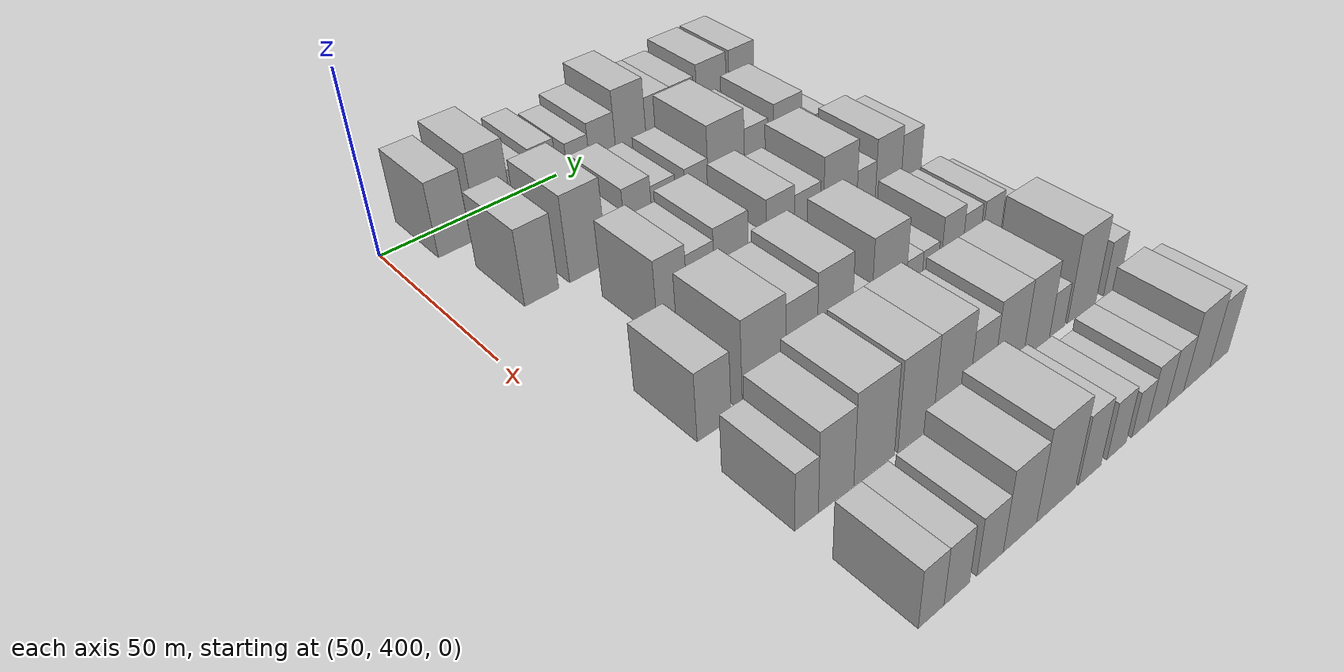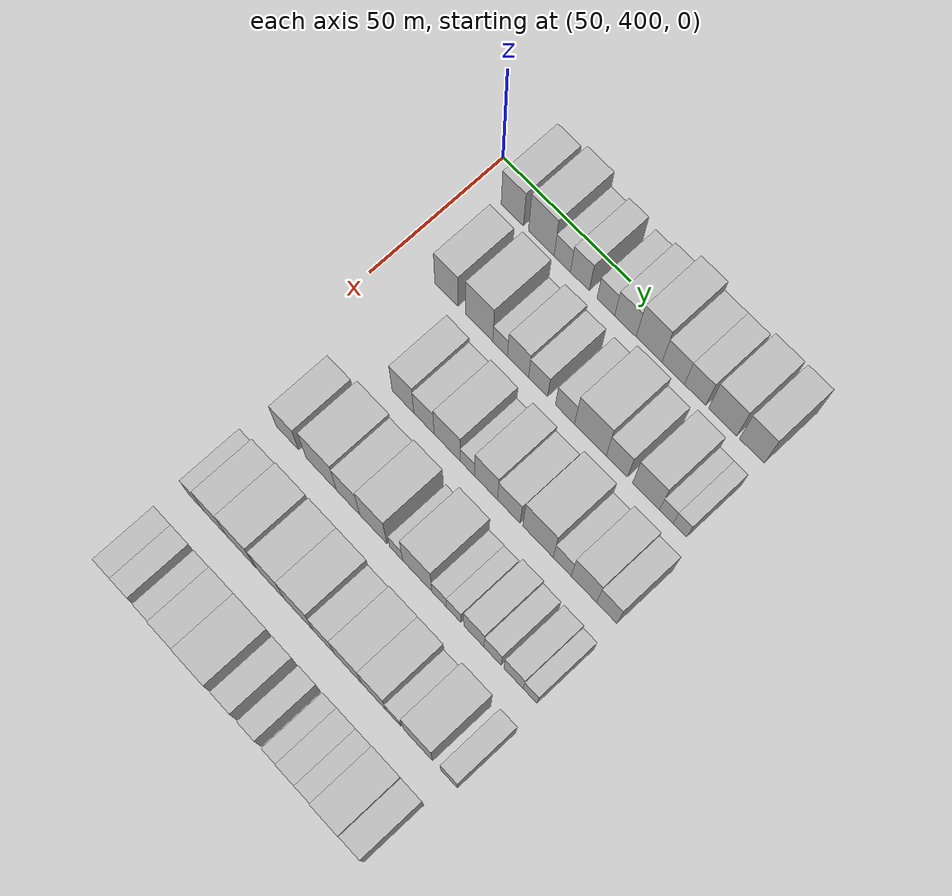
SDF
<sdf version="1.6">
 <world name="default">
  <model name="building_96">
   <static>1</static>
   <pose>50.0000 414.0144 0 0.000000 0.000000 0.000000</pose>
   <link name="link">
    <pose>0 0 10.50 0 0 0</pose>
    <collision name="collision"><geometry><box><size>20.0000 8.8623 21.0000</size></box></geometry></collision>
    <visual name="visual">
     <cast_shadows>0</cast_shadows>
     <geometry><box><size>20.0000 8.8623 21.0000</size></box></geometry>
     <material>
      <script>
       <uri>model://HANNAS_wall/materials/scripts</uri>
       <uri>model://HANNAS_wall/materials/textures</uri>
       <name>vrc/HANNAS_wall</name>
      </script>
     </material>
    </visual>
   </link>
  </model>
  <model name="building_97">
   <static>1</static>
   <pose>50.0000 425.4881 0 0.000000 0.000000 0.000000</pose>
   <link name="link">
    <pose>0 0 12.00 0 0 0</pose>
    <collision name="collision"><geometry><box><size>20.0000 10.0853 24.0000</size></box></geometry></collision>
    <visual name="visual">
     <cast_shadows>0</cast_shadows>
     <geometry><box><size>20.0000 10.0853 24.0000</size></box></geometry>
     <material>
      <script>
       <uri>model://HANNAS_wall/materials/scripts</uri>
       <uri>model://HANNAS_wall/materials/textures</uri>
       <name>vrc/HANNAS_wall</name>
      </script>
     </material>
    </visual>
   </link>
  </model>
  <model name="building_98">
   <static>1</static>
   <pose>50.0000 433.7259 0 0.000000 0.000000 0.000000</pose>
   <link name="link">
    <pose>0 0 7.50 0 0 0</pose>
    <collision name="collision"><geometry><box><size>20.0000 6.3903 15.0000</size></box></geometry></collision>
    <visual name="visual">
     <cast_shadows>0</cast_shadows>
     <geometry><box><size>20.0000 6.3903 15.0000</size></box></geometry>
     <material>
      <script>
       <uri>model://HANNAS_wall/materials/scripts</uri>
       <uri>model://HANNAS_wall/materials/textures</uri>
       <name>vrc/HANNAS_wall</name>
      </script>
     </material>
    </visual>
   </link>
  </model>
  <model name="building_99">
   <static>1</static>
   <pose>50.0000 440.5888 0 0.000000 0.000000 0.000000</pose>
   <link name="link">
    <pose>0 0 9.00 0 0 0</pose>
    <collision name="collision"><geometry><box><size>20.0000 7.3354 18.0000</size></box></geometry></collision>
    <visual name="visual">
     <cast_shadows>0</cast_shadows>
     <geometry><box><size>20.0000 7.3354 18.0000</size></box></geometry>
     <material>
      <script>
       <uri>model://HANNAS_wall/materials/scripts</uri>
       <uri>model://HANNAS_wall/materials/textures</uri>
       <name>vrc/HANNAS_wall</name>
      </script>
     </material>
    </visual>
   </link>
  </model>
  <model name="building_100">
   <static>1</static>
   <pose>50.0000 450.6545 0 0.000000 0.000000 0.000000</pose>
   <link name="link">
    <pose>0 0 7.50 0 0 0</pose>
    <collision name="collision"><geometry><box><size>20.0000 6.7960 15.0000</size></box></geometry></collision>
    <visual name="visual">
     <cast_shadows>0</cast_shadows>
     <geometry><box><size>20.0000 6.7960 15.0000</size></box></geometry>
     <material>
      <script>
       <uri>model://HANNAS_wall/materials/scripts</uri>
       <uri>model://HANNAS_wall/materials/textures</uri>
       <name>vrc/HANNAS_wall</name>
      </script>
     </material>
    </visual>
   </link>
  </model>
  <model name="building_101">
   <static>1</static>
   <pose>50.0000 458.1807 0 0.000000 0.000000 0.000000</pose>
   <link name="link">
    <pose>0 0 9.00 0 0 0</pose>
    <collision name="collision"><geometry><box><size>20.0000 8.2563 18.0000</size></box></geometry></collision>
    <visual name="visual">
     <cast_shadows>0</cast_shadows>
     <geometry><box><size>20.0000 8.2563 18.0000</size></box></geometry>
     <material>
      <script>
       <uri>model://HANNAS_wall/materials/scripts</uri>
       <uri>model://HANNAS_wall/materials/textures</uri>
       <name>vrc/HANNAS_wall</name>
      </script>
     </material>
    </visual>
   </link>
  </model>
  <model name="building_102">
   <static>1</static>
   <pose>50.0000 467.2118 0 0.000000 0.000000 0.000000</pose>
   <link name="link">
    <pose>0 0 12.00 0 0 0</pose>
    <collision name="collision"><geometry><box><size>20.0000 9.8058 24.0000</size></box></geometry></collision>
    <visual name="visual">
     <cast_shadows>0</cast_shadows>
     <geometry><box><size>20.0000 9.8058 24.0000</size></box></geometry>
     <material>
      <script>
       <uri>model://HANNAS_wall/materials/scripts</uri>
       <uri>model://HANNAS_wall/materials/textures</uri>
       <name>vrc/HANNAS_wall</name>
      </script>
     </material>
    </visual>
   </link>
  </model>
  <model name="building_103">
   <static>1</static>
   <pose>50.0000 476.3757 0 0.000000 0.000000 0.000000</pose>
   <link name="link">
    <pose>0 0 9.00 0 0 0</pose>
    <collision name="collision"><geometry><box><size>20.0000 8.5220 18.0000</size></box></geometry></collision>
    <visual name="visual">
     <cast_shadows>0</cast_shadows>
     <geometry><box><size>20.0000 8.5220 18.0000</size></box></geometry>
     <material>
      <script>
       <uri>model://HANNAS_wall/materials/scripts</uri>
       <uri>model://HANNAS_wall/materials/textures</uri>
       <name>vrc/HANNAS_wall</name>
      </script>
     </material>
    </visual>
   </link>
  </model>
  <model name="building_104">
   <static>1</static>
   <pose>50.0000 484.6328 0 0.000000 0.000000 0.000000</pose>
   <link name="link">
    <pose>0 0 9.00 0 0 0</pose>
    <collision name="collision"><geometry><box><size>20.0000 7.9922 18.0000</size></box></geometry></collision>
    <visual name="visual">
     <cast_shadows>0</cast_shadows>
     <geometry><box><size>20.0000 7.9922 18.0000</size></box></geometry>
     <material>
      <script>
       <uri>model://HANNAS_wall/materials/scripts</uri>
       <uri>model://HANNAS_wall/materials/textures</uri>
       <name>vrc/HANNAS_wall</name>
      </script>
     </material>
    </visual>
   </link>
  </model>
  <model name="building_105">
   <static>1</static>
   <pose>50.0000 494.8710 0 0.000000 0.000000 0.000000</pose>
   <link name="link">
    <pose>0 0 10.50 0 0 0</pose>
    <collision name="collision"><geometry><box><size>20.0000 10.4842 21.0000</size></box></geometry></collision>
    <visual name="visual">
     <cast_shadows>0</cast_shadows>
     <geometry><box><size>20.0000 10.4842 21.0000</size></box></geometry>
     <material>
      <script>
       <uri>model://HANNAS_wall/materials/scripts</uri>
       <uri>model://HANNAS_wall/materials/textures</uri>
       <name>vrc/HANNAS_wall</name>
      </script>
     </material>
    </visual>
   </link>
  </model>
  <model name="building_106">
   <static>1</static>
   <pose>50.0000 505.6787 0 0.000000 0.000000 0.000000</pose>
   <link name="link">
    <pose>0 0 10.50 0 0 0</pose>
    <collision name="collision"><geometry><box><size>20.0000 9.1311 21.0000</size></box></geometry></collision>
    <visual name="visual">
     <cast_shadows>0</cast_shadows>
     <geometry><box><size>20.0000 9.1311 21.0000</size></box></geometry>
     <material>
      <script>
       <uri>model://HANNAS_wall/materials/scripts</uri>
       <uri>model://HANNAS_wall/materials/textures</uri>
       <name>vrc/HANNAS_wall</name>
      </script>
     </material>
    </visual>
   </link>
  </model>
  <model name="building_212">
   <static>1</static>
   <pose>79.0000 418.7652 0 0.000000 0.000000 0.000000</pose>
   <link name="link">
    <pose>0 0 10.50 0 0 0</pose>
    <collision name="collision"><geometry><box><size>20.0000 9.1996 21.0000</size></box></geometry></collision>
    <visual name="visual">
     <cast_shadows>0</cast_shadows>
     <geometry><box><size>20.0000 9.1996 21.0000</size></box></geometry>
     <material>
      <script>
       <uri>model://HANNAS_wall/materials/scripts</uri>
       <uri>model://HANNAS_wall/materials/textures</uri>
       <name>vrc/HANNAS_wall</name>
      </script>
     </material>
    </visual>
   </link>
  </model>
  <model name="building_213">
   <static>1</static>
   <pose>79.0000 431.7060 0 0.000000 0.000000 0.000000</pose>
   <link name="link">
    <pose>0 0 12.00 0 0 0</pose>
    <collision name="collision"><geometry><box><size>20.0000 10.6821 24.0000</size></box></geometry></collision>
    <visual name="visual">
     <cast_shadows>0</cast_shadows>
     <geometry><box><size>20.0000 10.6821 24.0000</size></box></geometry>
     <material>
      <script>
       <uri>model://HANNAS_wall/materials/scripts</uri>
       <uri>model://HANNAS_wall/materials/textures</uri>
       <name>vrc/HANNAS_wall</name>
      </script>
     </material>
    </visual>
   </link>
  </model>
  <model name="building_214">
   <static>1</static>
   <pose>79.0000 439.8993 0 0.000000 0.000000 0.000000</pose>
   <link name="link">
    <pose>0 0 6.00 0 0 0</pose>
    <collision name="collision"><geometry><box><size>20.0000 5.7044 12.0000</size></box></geometry></collision>
    <visual name="visual">
     <cast_shadows>0</cast_shadows>
     <geometry><box><size>20.0000 5.7044 12.0000</size></box></geometry>
     <material>
      <script>
       <uri>model://HANNAS_wall/materials/scripts</uri>
       <uri>model://HANNAS_wall/materials/textures</uri>
       <name>vrc/HANNAS_wall</name>
      </script>
     </material>
    </visual>
   </link>
  </model>
  <model name="building_215">
   <static>1</static>
   <pose>79.0000 446.8409 0 0.000000 0.000000 0.000000</pose>
   <link name="link">
    <pose>0 0 9.00 0 0 0</pose>
    <collision name="collision"><geometry><box><size>20.0000 8.1787 18.0000</size></box></geometry></collision>
    <visual name="visual">
     <cast_shadows>0</cast_shadows>
     <geometry><box><size>20.0000 8.1787 18.0000</size></box></geometry>
     <material>
      <script>
       <uri>model://HANNAS_wall/materials/scripts</uri>
       <uri>model://HANNAS_wall/materials/textures</uri>
       <name>vrc/HANNAS_wall</name>
      </script>
     </material>
    </visual>
   </link>
  </model>
  <model name="building_216">
   <static>1</static>
   <pose>79.0000 454.5914 0 0.000000 0.000000 0.000000</pose>
   <link name="link">
    <pose>0 0 7.50 0 0 0</pose>
    <collision name="collision"><geometry><box><size>20.0000 7.3223 15.0000</size></box></geometry></collision>
    <visual name="visual">
     <cast_shadows>0</cast_shadows>
     <geometry><box><size>20.0000 7.3223 15.0000</size></box></geometry>
     <material>
      <script>
       <uri>model://HANNAS_wall/materials/scripts</uri>
       <uri>model://HANNAS_wall/materials/textures</uri>
       <name>vrc/HANNAS_wall</name>
      </script>
     </material>
    </visual>
   </link>
  </model>
  <model name="building_217">
   <static>1</static>
   <pose>79.0000 464.8938 0 0.000000 0.000000 0.000000</pose>
   <link name="link">
    <pose>0 0 7.50 0 0 0</pose>
    <collision name="collision"><geometry><box><size>20.0000 7.2827 15.0000</size></box></geometry></collision>
    <visual name="visual">
     <cast_shadows>0</cast_shadows>
     <geometry><box><size>20.0000 7.2827 15.0000</size></box></geometry>
     <material>
      <script>
       <uri>model://HANNAS_wall/materials/scripts</uri>
       <uri>model://HANNAS_wall/materials/textures</uri>
       <name>vrc/HANNAS_wall</name>
      </script>
     </material>
    </visual>
   </link>
  </model>
  <model name="building_218">
   <static>1</static>
   <pose>79.0000 474.5180 0 0.000000 0.000000 0.000000</pose>
   <link name="link">
    <pose>0 0 12.00 0 0 0</pose>
    <collision name="collision"><geometry><box><size>20.0000 11.9656 24.0000</size></box></geometry></collision>
    <visual name="visual">
     <cast_shadows>0</cast_shadows>
     <geometry><box><size>20.0000 11.9656 24.0000</size></box></geometry>
     <material>
      <script>
       <uri>model://HANNAS_wall/materials/scripts</uri>
       <uri>model://HANNAS_wall/materials/textures</uri>
       <name>vrc/HANNAS_wall</name>
      </script>
     </material>
    </visual>
   </link>
  </model>
  <model name="building_219">
   <static>1</static>
   <pose>79.0000 484.4787 0 0.000000 0.000000 0.000000</pose>
   <link name="link">
    <pose>0 0 9.00 0 0 0</pose>
    <collision name="collision"><geometry><box><size>20.0000 7.9559 18.0000</size></box></geometry></collision>
    <visual name="visual">
     <cast_shadows>0</cast_shadows>
     <geometry><box><size>20.0000 7.9559 18.0000</size></box></geometry>
     <material>
      <script>
       <uri>model://HANNAS_wall/materials/scripts</uri>
       <uri>model://HANNAS_wall/materials/textures</uri>
       <name>vrc/HANNAS_wall</name>
      </script>
     </material>
    </visual>
   </link>
  </model>
  <model name="building_220">
   <static>1</static>
   <pose>79.0000 495.4283 0 0.000000 0.000000 0.000000</pose>
   <link name="link">
    <pose>0 0 10.50 0 0 0</pose>
    <collision name="collision"><geometry><box><size>20.0000 9.9432 21.0000</size></box></geometry></collision>
    <visual name="visual">
     <cast_shadows>0</cast_shadows>
     <geometry><box><size>20.0000 9.9432 21.0000</size></box></geometry>
     <material>
      <script>
       <uri>model://HANNAS_wall/materials/scripts</uri>
       <uri>model://HANNAS_wall/materials/textures</uri>
       <name>vrc/HANNAS_wall</name>
      </script>
     </material>
    </visual>
   </link>
  </model>
  <model name="building_221">
   <static>1</static>
   <pose>79.0000 502.9226 0 0.000000 0.000000 0.000000</pose>
   <link name="link">
    <pose>0 0 6.00 0 0 0</pose>
    <collision name="collision"><geometry><box><size>20.0000 5.0453 12.0000</size></box></geometry></collision>
    <visual name="visual">
     <cast_shadows>0</cast_shadows>
     <geometry><box><size>20.0000 5.0453 12.0000</size></box></geometry>
     <material>
      <script>
       <uri>model://HANNAS_wall/materials/scripts</uri>
       <uri>model://HANNAS_wall/materials/textures</uri>
       <name>vrc/HANNAS_wall</name>
      </script>
     </material>
    </visual>
   </link>
  </model>
  <model name="building_222">
   <static>1</static>
   <pose>79.0000 507.9331 0 0.000000 0.000000 0.000000</pose>
   <link name="link">
    <pose>0 0 6.00 0 0 0</pose>
    <collision name="collision"><geometry><box><size>20.0000 4.9758 12.0000</size></box></geometry></collision>
    <visual name="visual">
     <cast_shadows>0</cast_shadows>
     <geometry><box><size>20.0000 4.9758 12.0000</size></box></geometry>
     <material>
      <script>
       <uri>model://HANNAS_wall/materials/scripts</uri>
       <uri>model://HANNAS_wall/materials/textures</uri>
       <name>vrc/HANNAS_wall</name>
      </script>
     </material>
    </visual>
   </link>
  </model>
  <model name="building_319">
   <static>1</static>
   <pose>108.0000 433.1368 0 0.000000 0.000000 0.000000</pose>
   <link name="link">
    <pose>0 0 10.50 0 0 0</pose>
    <collision name="collision"><geometry><box><size>20.0000 8.5145 21.0000</size></box></geometry></collision>
    <visual name="visual">
     <cast_shadows>0</cast_shadows>
     <geometry><box><size>20.0000 8.5145 21.0000</size></box></geometry>
     <material>
      <script>
       <uri>model://HANNAS_wall/materials/scripts</uri>
       <uri>model://HANNAS_wall/materials/textures</uri>
       <name>vrc/HANNAS_wall</name>
      </script>
     </material>
    </visual>
   </link>
  </model>
  <model name="building_320">
   <static>1</static>
   <pose>108.0000 441.3507 0 0.000000 0.000000 0.000000</pose>
   <link name="link">
    <pose>0 0 9.00 0 0 0</pose>
    <collision name="collision"><geometry><box><size>20.0000 7.9133 18.0000</size></box></geometry></collision>
    <visual name="visual">
     <cast_shadows>0</cast_shadows>
     <geometry><box><size>20.0000 7.9133 18.0000</size></box></geometry>
     <material>
      <script>
       <uri>model://HANNAS_wall/materials/scripts</uri>
       <uri>model://HANNAS_wall/materials/textures</uri>
       <name>vrc/HANNAS_wall</name>
      </script>
     </material>
    </visual>
   </link>
  </model>
  <model name="building_321">
   <static>1</static>
   <pose>108.0000 450.3646 0 0.000000 0.000000 0.000000</pose>
   <link name="link">
    <pose>0 0 10.50 0 0 0</pose>
    <collision name="collision"><geometry><box><size>20.0000 10.1147 21.0000</size></box></geometry></collision>
    <visual name="visual">
     <cast_shadows>0</cast_shadows>
     <geometry><box><size>20.0000 10.1147 21.0000</size></box></geometry>
     <material>
      <script>
       <uri>model://HANNAS_wall/materials/scripts</uri>
       <uri>model://HANNAS_wall/materials/textures</uri>
       <name>vrc/HANNAS_wall</name>
      </script>
     </material>
    </visual>
   </link>
  </model>
  <model name="building_322">
   <static>1</static>
   <pose>108.0000 458.1462 0 0.000000 0.000000 0.000000</pose>
   <link name="link">
    <pose>0 0 6.00 0 0 0</pose>
    <collision name="collision"><geometry><box><size>20.0000 5.4485 12.0000</size></box></geometry></collision>
    <visual name="visual">
     <cast_shadows>0</cast_shadows>
     <geometry><box><size>20.0000 5.4485 12.0000</size></box></geometry>
     <material>
      <script>
       <uri>model://HANNAS_wall/materials/scripts</uri>
       <uri>model://HANNAS_wall/materials/textures</uri>
       <name>vrc/HANNAS_wall</name>
      </script>
     </material>
    </visual>
   </link>
  </model>
  <model name="building_323">
   <static>1</static>
   <pose>108.0000 465.2541 0 0.000000 0.000000 0.000000</pose>
   <link name="link">
    <pose>0 0 10.50 0 0 0</pose>
    <collision name="collision"><geometry><box><size>20.0000 8.7674 21.0000</size></box></geometry></collision>
    <visual name="visual">
     <cast_shadows>0</cast_shadows>
     <geometry><box><size>20.0000 8.7674 21.0000</size></box></geometry>
     <material>
      <script>
       <uri>model://HANNAS_wall/materials/scripts</uri>
       <uri>model://HANNAS_wall/materials/textures</uri>
       <name>vrc/HANNAS_wall</name>
      </script>
     </material>
    </visual>
   </link>
  </model>
  <model name="building_324">
   <static>1</static>
   <pose>108.0000 473.9256 0 0.000000 0.000000 0.000000</pose>
   <link name="link">
    <pose>0 0 9.00 0 0 0</pose>
    <collision name="collision"><geometry><box><size>20.0000 8.5756 18.0000</size></box></geometry></collision>
    <visual name="visual">
     <cast_shadows>0</cast_shadows>
     <geometry><box><size>20.0000 8.5756 18.0000</size></box></geometry>
     <material>
      <script>
       <uri>model://HANNAS_wall/materials/scripts</uri>
       <uri>model://HANNAS_wall/materials/textures</uri>
       <name>vrc/HANNAS_wall</name>
      </script>
     </material>
    </visual>
   </link>
  </model>
  <model name="building_325">
   <static>1</static>
   <pose>108.0000 484.9368 0 0.000000 0.000000 0.000000</pose>
   <link name="link">
    <pose>0 0 12.00 0 0 0</pose>
    <collision name="collision"><geometry><box><size>20.0000 11.4468 24.0000</size></box></geometry></collision>
    <visual name="visual">
     <cast_shadows>0</cast_shadows>
     <geometry><box><size>20.0000 11.4468 24.0000</size></box></geometry>
     <material>
      <script>
       <uri>model://HANNAS_wall/materials/scripts</uri>
       <uri>model://HANNAS_wall/materials/textures</uri>
       <name>vrc/HANNAS_wall</name>
      </script>
     </material>
    </visual>
   </link>
  </model>
  <model name="building_326">
   <static>1</static>
   <pose>108.0000 493.9892 0 0.000000 0.000000 0.000000</pose>
   <link name="link">
    <pose>0 0 7.50 0 0 0</pose>
    <collision name="collision"><geometry><box><size>20.0000 6.6579 15.0000</size></box></geometry></collision>
    <visual name="visual">
     <cast_shadows>0</cast_shadows>
     <geometry><box><size>20.0000 6.6579 15.0000</size></box></geometry>
     <material>
      <script>
       <uri>model://HANNAS_wall/materials/scripts</uri>
       <uri>model://HANNAS_wall/materials/textures</uri>
       <name>vrc/HANNAS_wall</name>
      </script>
     </material>
    </visual>
   </link>
  </model>
  <model name="building_327">
   <static>1</static>
   <pose>108.0000 502.0335 0 0.000000 0.000000 0.000000</pose>
   <link name="link">
    <pose>0 0 10.50 0 0 0</pose>
    <collision name="collision"><geometry><box><size>20.0000 9.4308 21.0000</size></box></geometry></collision>
    <visual name="visual">
     <cast_shadows>0</cast_shadows>
     <geometry><box><size>20.0000 9.4308 21.0000</size></box></geometry>
     <material>
      <script>
       <uri>model://HANNAS_wall/materials/scripts</uri>
       <uri>model://HANNAS_wall/materials/textures</uri>
       <name>vrc/HANNAS_wall</name>
      </script>
     </material>
    </visual>
   </link>
  </model>
  <model name="building_328">
   <static>1</static>
   <pose>108.0000 510.4837 0 0.000000 0.000000 0.000000</pose>
   <link name="link">
    <pose>0 0 9.00 0 0 0</pose>
    <collision name="collision"><geometry><box><size>20.0000 7.4697 18.0000</size></box></geometry></collision>
    <visual name="visual">
     <cast_shadows>0</cast_shadows>
     <geometry><box><size>20.0000 7.4697 18.0000</size></box></geometry>
     <material>
      <script>
       <uri>model://HANNAS_wall/materials/scripts</uri>
       <uri>model://HANNAS_wall/materials/textures</uri>
       <name>vrc/HANNAS_wall</name>
      </script>
     </material>
    </visual>
   </link>
  </model>
  <model name="building_433">
   <static>1</static>
   <pose>137.0000 419.6978 0 0.000000 0.000000 0.000000</pose>
   <link name="link">
    <pose>0 0 9.00 0 0 0</pose>
    <collision name="collision"><geometry><box><size>20.0000 8.9475 18.0000</size></box></geometry></collision>
    <visual name="visual">
     <cast_shadows>0</cast_shadows>
     <geometry><box><size>20.0000 8.9475 18.0000</size></box></geometry>
     <material>
      <script>
       <uri>model://HANNAS_wall/materials/scripts</uri>
       <uri>model://HANNAS_wall/materials/textures</uri>
       <name>vrc/HANNAS_wall</name>
      </script>
     </material>
    </visual>
   </link>
  </model>
  <model name="building_434">
   <static>1</static>
   <pose>137.0000 433.1553 0 0.000000 0.000000 0.000000</pose>
   <link name="link">
    <pose>0 0 12.00 0 0 0</pose>
    <collision name="collision"><geometry><box><size>20.0000 11.9675 24.0000</size></box></geometry></collision>
    <visual name="visual">
     <cast_shadows>0</cast_shadows>
     <geometry><box><size>20.0000 11.9675 24.0000</size></box></geometry>
     <material>
      <script>
       <uri>model://HANNAS_wall/materials/scripts</uri>
       <uri>model://HANNAS_wall/materials/textures</uri>
       <name>vrc/HANNAS_wall</name>
      </script>
     </material>
    </visual>
   </link>
  </model>
  <model name="building_435">
   <static>1</static>
   <pose>137.0000 443.6892 0 0.000000 0.000000 0.000000</pose>
   <link name="link">
    <pose>0 0 10.50 0 0 0</pose>
    <collision name="collision"><geometry><box><size>20.0000 9.1003 21.0000</size></box></geometry></collision>
    <visual name="visual">
     <cast_shadows>0</cast_shadows>
     <geometry><box><size>20.0000 9.1003 21.0000</size></box></geometry>
     <material>
      <script>
       <uri>model://HANNAS_wall/materials/scripts</uri>
       <uri>model://HANNAS_wall/materials/textures</uri>
       <name>vrc/HANNAS_wall</name>
      </script>
     </material>
    </visual>
   </link>
  </model>
  <model name="building_436">
   <static>1</static>
   <pose>137.0000 453.4875 0 0.000000 0.000000 0.000000</pose>
   <link name="link">
    <pose>0 0 12.00 0 0 0</pose>
    <collision name="collision"><geometry><box><size>20.0000 10.4963 24.0000</size></box></geometry></collision>
    <visual name="visual">
     <cast_shadows>0</cast_shadows>
     <geometry><box><size>20.0000 10.4963 24.0000</size></box></geometry>
     <material>
      <script>
       <uri>model://HANNAS_wall/materials/scripts</uri>
       <uri>model://HANNAS_wall/materials/textures</uri>
       <name>vrc/HANNAS_wall</name>
      </script>
     </material>
    </visual>
   </link>
  </model>
  <model name="building_437">
   <static>1</static>
   <pose>137.0000 462.2567 0 0.000000 0.000000 0.000000</pose>
   <link name="link">
    <pose>0 0 6.00 0 0 0</pose>
    <collision name="collision"><geometry><box><size>20.0000 5.0422 12.0000</size></box></geometry></collision>
    <visual name="visual">
     <cast_shadows>0</cast_shadows>
     <geometry><box><size>20.0000 5.0422 12.0000</size></box></geometry>
     <material>
      <script>
       <uri>model://HANNAS_wall/materials/scripts</uri>
       <uri>model://HANNAS_wall/materials/textures</uri>
       <name>vrc/HANNAS_wall</name>
      </script>
     </material>
    </visual>
   </link>
  </model>
  <model name="building_438">
   <static>1</static>
   <pose>137.0000 470.3240 0 0.000000 0.000000 0.000000</pose>
   <link name="link">
    <pose>0 0 12.00 0 0 0</pose>
    <collision name="collision"><geometry><box><size>20.0000 11.0924 24.0000</size></box></geometry></collision>
    <visual name="visual">
     <cast_shadows>0</cast_shadows>
     <geometry><box><size>20.0000 11.0924 24.0000</size></box></geometry>
     <material>
      <script>
       <uri>model://HANNAS_wall/materials/scripts</uri>
       <uri>model://HANNAS_wall/materials/textures</uri>
       <name>vrc/HANNAS_wall</name>
      </script>
     </material>
    </visual>
   </link>
  </model>
  <model name="building_439">
   <static>1</static>
   <pose>137.0000 478.6222 0 0.000000 0.000000 0.000000</pose>
   <link name="link">
    <pose>0 0 6.00 0 0 0</pose>
    <collision name="collision"><geometry><box><size>20.0000 5.5041 12.0000</size></box></geometry></collision>
    <visual name="visual">
     <cast_shadows>0</cast_shadows>
     <geometry><box><size>20.0000 5.5041 12.0000</size></box></geometry>
     <material>
      <script>
       <uri>model://HANNAS_wall/materials/scripts</uri>
       <uri>model://HANNAS_wall/materials/textures</uri>
       <name>vrc/HANNAS_wall</name>
      </script>
     </material>
    </visual>
   </link>
  </model>
  <model name="building_440">
   <static>1</static>
   <pose>137.0000 484.0922 0 0.000000 0.000000 0.000000</pose>
   <link name="link">
    <pose>0 0 6.00 0 0 0</pose>
    <collision name="collision"><geometry><box><size>20.0000 5.4358 12.0000</size></box></geometry></collision>
    <visual name="visual">
     <cast_shadows>0</cast_shadows>
     <geometry><box><size>20.0000 5.4358 12.0000</size></box></geometry>
     <material>
      <script>
       <uri>model://HANNAS_wall/materials/scripts</uri>
       <uri>model://HANNAS_wall/materials/textures</uri>
       <name>vrc/HANNAS_wall</name>
      </script>
     </material>
    </visual>
   </link>
  </model>
  <model name="building_441">
   <static>1</static>
   <pose>137.0000 491.6009 0 0.000000 0.000000 0.000000</pose>
   <link name="link">
    <pose>0 0 9.00 0 0 0</pose>
    <collision name="collision"><geometry><box><size>20.0000 7.5816 18.0000</size></box></geometry></collision>
    <visual name="visual">
     <cast_shadows>0</cast_shadows>
     <geometry><box><size>20.0000 7.5816 18.0000</size></box></geometry>
     <material>
      <script>
       <uri>model://HANNAS_wall/materials/scripts</uri>
       <uri>model://HANNAS_wall/materials/textures</uri>
       <name>vrc/HANNAS_wall</name>
      </script>
     </material>
    </visual>
   </link>
  </model>
  <model name="building_442">
   <static>1</static>
   <pose>137.0000 498.5925 0 0.000000 0.000000 0.000000</pose>
   <link name="link">
    <pose>0 0 7.50 0 0 0</pose>
    <collision name="collision"><geometry><box><size>20.0000 6.4016 15.0000</size></box></geometry></collision>
    <visual name="visual">
     <cast_shadows>0</cast_shadows>
     <geometry><box><size>20.0000 6.4016 15.0000</size></box></geometry>
     <material>
      <script>
       <uri>model://HANNAS_wall/materials/scripts</uri>
       <uri>model://HANNAS_wall/materials/textures</uri>
       <name>vrc/HANNAS_wall</name>
      </script>
     </material>
    </visual>
   </link>
  </model>
  <model name="building_443">
   <static>1</static>
   <pose>137.0000 506.3586 0 0.000000 0.000000 0.000000</pose>
   <link name="link">
    <pose>0 0 7.50 0 0 0</pose>
    <collision name="collision"><geometry><box><size>20.0000 7.1305 15.0000</size></box></geometry></collision>
    <visual name="visual">
     <cast_shadows>0</cast_shadows>
     <geometry><box><size>20.0000 7.1305 15.0000</size></box></geometry>
     <material>
      <script>
       <uri>model://HANNAS_wall/materials/scripts</uri>
       <uri>model://HANNAS_wall/materials/textures</uri>
       <name>vrc/HANNAS_wall</name>
      </script>
     </material>
    </visual>
   </link>
  </model>
  <model name="building_444">
   <static>1</static>
   <pose>137.0000 512.4697 0 0.000000 0.000000 0.000000</pose>
   <link name="link">
    <pose>0 0 6.00 0 0 0</pose>
    <collision name="collision"><geometry><box><size>20.0000 5.0918 12.0000</size></box></geometry></collision>
    <visual name="visual">
     <cast_shadows>0</cast_shadows>
     <geometry><box><size>20.0000 5.0918 12.0000</size></box></geometry>
     <material>
      <script>
       <uri>model://HANNAS_wall/materials/scripts</uri>
       <uri>model://HANNAS_wall/materials/textures</uri>
       <name>vrc/HANNAS_wall</name>
      </script>
     </material>
    </visual>
   </link>
  </model>
  <model name="building_553">
   <static>1</static>
   <pose>166.0000 416.6991 0 0.000000 0.000000 0.000000</pose>
   <link name="link">
    <pose>0 0 7.50 0 0 0</pose>
    <collision name="collision"><geometry><box><size>20.0000 6.0056 15.0000</size></box></geometry></collision>
    <visual name="visual">
     <cast_shadows>0</cast_shadows>
     <geometry><box><size>20.0000 6.0056 15.0000</size></box></geometry>
     <material>
      <script>
       <uri>model://HANNAS_wall/materials/scripts</uri>
       <uri>model://HANNAS_wall/materials/textures</uri>
       <name>vrc/HANNAS_wall</name>
      </script>
     </material>
    </visual>
   </link>
  </model>
  <model name="building_554">
   <static>1</static>
   <pose>166.0000 424.4060 0 0.000000 0.000000 0.000000</pose>
   <link name="link">
    <pose>0 0 10.50 0 0 0</pose>
    <collision name="collision"><geometry><box><size>20.0000 9.4082 21.0000</size></box></geometry></collision>
    <visual name="visual">
     <cast_shadows>0</cast_shadows>
     <geometry><box><size>20.0000 9.4082 21.0000</size></box></geometry>
     <material>
      <script>
       <uri>model://HANNAS_wall/materials/scripts</uri>
       <uri>model://HANNAS_wall/materials/textures</uri>
       <name>vrc/HANNAS_wall</name>
      </script>
     </material>
    </visual>
   </link>
  </model>
  <model name="building_555">
   <static>1</static>
   <pose>166.0000 434.7822 0 0.000000 0.000000 0.000000</pose>
   <link name="link">
    <pose>0 0 12.00 0 0 0</pose>
    <collision name="collision"><geometry><box><size>20.0000 11.3441 24.0000</size></box></geometry></collision>
    <visual name="visual">
     <cast_shadows>0</cast_shadows>
     <geometry><box><size>20.0000 11.3441 24.0000</size></box></geometry>
     <material>
      <script>
       <uri>model://HANNAS_wall/materials/scripts</uri>
       <uri>model://HANNAS_wall/materials/textures</uri>
       <name>vrc/HANNAS_wall</name>
      </script>
     </material>
    </visual>
   </link>
  </model>
  <model name="building_556">
   <static>1</static>
   <pose>166.0000 446.6092 0 0.000000 0.000000 0.000000</pose>
   <link name="link">
    <pose>0 0 12.00 0 0 0</pose>
    <collision name="collision"><geometry><box><size>20.0000 10.3099 24.0000</size></box></geometry></collision>
    <visual name="visual">
     <cast_shadows>0</cast_shadows>
     <geometry><box><size>20.0000 10.3099 24.0000</size></box></geometry>
     <material>
      <script>
       <uri>model://HANNAS_wall/materials/scripts</uri>
       <uri>model://HANNAS_wall/materials/textures</uri>
       <name>vrc/HANNAS_wall</name>
      </script>
     </material>
    </visual>
   </link>
  </model>
  <model name="building_557">
   <static>1</static>
   <pose>166.0000 457.2627 0 0.000000 0.000000 0.000000</pose>
   <link name="link">
    <pose>0 0 12.00 0 0 0</pose>
    <collision name="collision"><geometry><box><size>20.0000 10.9969 24.0000</size></box></geometry></collision>
    <visual name="visual">
     <cast_shadows>0</cast_shadows>
     <geometry><box><size>20.0000 10.9969 24.0000</size></box></geometry>
     <material>
      <script>
       <uri>model://HANNAS_wall/materials/scripts</uri>
       <uri>model://HANNAS_wall/materials/textures</uri>
       <name>vrc/HANNAS_wall</name>
      </script>
     </material>
    </visual>
   </link>
  </model>
  <model name="building_558">
   <static>1</static>
   <pose>166.0000 466.7726 0 0.000000 0.000000 0.000000</pose>
   <link name="link">
    <pose>0 0 9.00 0 0 0</pose>
    <collision name="collision"><geometry><box><size>20.0000 8.0230 18.0000</size></box></geometry></collision>
    <visual name="visual">
     <cast_shadows>0</cast_shadows>
     <geometry><box><size>20.0000 8.0230 18.0000</size></box></geometry>
     <material>
      <script>
       <uri>model://HANNAS_wall/materials/scripts</uri>
       <uri>model://HANNAS_wall/materials/textures</uri>
       <name>vrc/HANNAS_wall</name>
      </script>
     </material>
    </visual>
   </link>
  </model>
  <model name="building_559">
   <static>1</static>
   <pose>166.0000 475.9257 0 0.000000 0.000000 0.000000</pose>
   <link name="link">
    <pose>0 0 10.50 0 0 0</pose>
    <collision name="collision"><geometry><box><size>20.0000 10.2831 21.0000</size></box></geometry></collision>
    <visual name="visual">
     <cast_shadows>0</cast_shadows>
     <geometry><box><size>20.0000 10.2831 21.0000</size></box></geometry>
     <material>
      <script>
       <uri>model://HANNAS_wall/materials/scripts</uri>
       <uri>model://HANNAS_wall/materials/textures</uri>
       <name>vrc/HANNAS_wall</name>
      </script>
     </material>
    </visual>
   </link>
  </model>
  <model name="building_560">
   <static>1</static>
   <pose>166.0000 485.6845 0 0.000000 0.000000 0.000000</pose>
   <link name="link">
    <pose>0 0 10.50 0 0 0</pose>
    <collision name="collision"><geometry><box><size>20.0000 9.2346 21.0000</size></box></geometry></collision>
    <visual name="visual">
     <cast_shadows>0</cast_shadows>
     <geometry><box><size>20.0000 9.2346 21.0000</size></box></geometry>
     <material>
      <script>
       <uri>model://HANNAS_wall/materials/scripts</uri>
       <uri>model://HANNAS_wall/materials/textures</uri>
       <name>vrc/HANNAS_wall</name>
      </script>
     </material>
    </visual>
   </link>
  </model>
  <model name="building_561">
   <static>1</static>
   <pose>166.0000 493.0737 0 0.000000 0.000000 0.000000</pose>
   <link name="link">
    <pose>0 0 6.00 0 0 0</pose>
    <collision name="collision"><geometry><box><size>20.0000 5.5439 12.0000</size></box></geometry></collision>
    <visual name="visual">
     <cast_shadows>0</cast_shadows>
     <geometry><box><size>20.0000 5.5439 12.0000</size></box></geometry>
     <material>
      <script>
       <uri>model://HANNAS_wall/materials/scripts</uri>
       <uri>model://HANNAS_wall/materials/textures</uri>
       <name>vrc/HANNAS_wall</name>
      </script>
     </material>
    </visual>
   </link>
  </model>
  <model name="building_562">
   <static>1</static>
   <pose>166.0000 502.2074 0 0.000000 0.000000 0.000000</pose>
   <link name="link">
    <pose>0 0 12.00 0 0 0</pose>
    <collision name="collision"><geometry><box><size>20.0000 10.7234 24.0000</size></box></geometry></collision>
    <visual name="visual">
     <cast_shadows>0</cast_shadows>
     <geometry><box><size>20.0000 10.7234 24.0000</size></box></geometry>
     <material>
      <script>
       <uri>model://HANNAS_wall/materials/scripts</uri>
       <uri>model://HANNAS_wall/materials/textures</uri>
       <name>vrc/HANNAS_wall</name>
      </script>
     </material>
    </visual>
   </link>
  </model>
  <model name="building_563">
   <static>1</static>
   <pose>166.0000 513.6444 0 0.000000 0.000000 0.000000</pose>
   <link name="link">
    <pose>0 0 7.50 0 0 0</pose>
    <collision name="collision"><geometry><box><size>20.0000 6.1506 15.0000</size></box></geometry></collision>
    <visual name="visual">
     <cast_shadows>0</cast_shadows>
     <geometry><box><size>20.0000 6.1506 15.0000</size></box></geometry>
     <material>
      <script>
       <uri>model://HANNAS_wall/materials/scripts</uri>
       <uri>model://HANNAS_wall/materials/textures</uri>
       <name>vrc/HANNAS_wall</name>
      </script>
     </material>
    </visual>
   </link>
  </model>
  <model name="building_666">
   <static>1</static>
   <pose>195.0000 417.6213 0 0.000000 0.000000 0.000000</pose>
   <link name="link">
    <pose>0 0 7.50 0 0 0</pose>
    <collision name="collision"><geometry><box><size>20.0000 6.6110 15.0000</size></box></geometry></collision>
    <visual name="visual">
     <cast_shadows>0</cast_shadows>
     <geometry><box><size>20.0000 6.6110 15.0000</size></box></geometry>
     <material>
      <script>
       <uri>model://HANNAS_wall/materials/scripts</uri>
       <uri>model://HANNAS_wall/materials/textures</uri>
       <name>vrc/HANNAS_wall</name>
      </script>
     </material>
    </visual>
   </link>
  </model>
  <model name="building_667">
   <static>1</static>
   <pose>195.0000 424.3405 0 0.000000 0.000000 0.000000</pose>
   <link name="link">
    <pose>0 0 7.50 0 0 0</pose>
    <collision name="collision"><geometry><box><size>20.0000 6.8273 15.0000</size></box></geometry></collision>
    <visual name="visual">
     <cast_shadows>0</cast_shadows>
     <geometry><box><size>20.0000 6.8273 15.0000</size></box></geometry>
     <material>
      <script>
       <uri>model://HANNAS_wall/materials/scripts</uri>
       <uri>model://HANNAS_wall/materials/textures</uri>
       <name>vrc/HANNAS_wall</name>
      </script>
     </material>
    </visual>
   </link>
  </model>
  <model name="building_668">
   <static>1</static>
   <pose>195.0000 433.4362 0 0.000000 0.000000 0.000000</pose>
   <link name="link">
    <pose>0 0 7.50 0 0 0</pose>
    <collision name="collision"><geometry><box><size>20.0000 7.3642 15.0000</size></box></geometry></collision>
    <visual name="visual">
     <cast_shadows>0</cast_shadows>
     <geometry><box><size>20.0000 7.3642 15.0000</size></box></geometry>
     <material>
      <script>
       <uri>model://HANNAS_wall/materials/scripts</uri>
       <uri>model://HANNAS_wall/materials/textures</uri>
       <name>vrc/HANNAS_wall</name>
      </script>
     </material>
    </visual>
   </link>
  </model>
  <model name="building_669">
   <static>1</static>
   <pose>195.0000 442.0012 0 0.000000 0.000000 0.000000</pose>
   <link name="link">
    <pose>0 0 10.50 0 0 0</pose>
    <collision name="collision"><geometry><box><size>20.0000 9.7659 21.0000</size></box></geometry></collision>
    <visual name="visual">
     <cast_shadows>0</cast_shadows>
     <geometry><box><size>20.0000 9.7659 21.0000</size></box></geometry>
     <material>
      <script>
       <uri>model://HANNAS_wall/materials/scripts</uri>
       <uri>model://HANNAS_wall/materials/textures</uri>
       <name>vrc/HANNAS_wall</name>
      </script>
     </material>
    </visual>
   </link>
  </model>
  <model name="building_670">
   <static>1</static>
   <pose>195.0000 452.8825 0 0.000000 0.000000 0.000000</pose>
   <link name="link">
    <pose>0 0 12.00 0 0 0</pose>
    <collision name="collision"><geometry><box><size>20.0000 11.9965 24.0000</size></box></geometry></collision>
    <visual name="visual">
     <cast_shadows>0</cast_shadows>
     <geometry><box><size>20.0000 11.9965 24.0000</size></box></geometry>
     <material>
      <script>
       <uri>model://HANNAS_wall/materials/scripts</uri>
       <uri>model://HANNAS_wall/materials/textures</uri>
       <name>vrc/HANNAS_wall</name>
      </script>
     </material>
    </visual>
   </link>
  </model>
  <model name="building_671">
   <static>1</static>
   <pose>195.0000 463.5295 0 0.000000 0.000000 0.000000</pose>
   <link name="link">
    <pose>0 0 9.00 0 0 0</pose>
    <collision name="collision"><geometry><box><size>20.0000 7.2975 18.0000</size></box></geometry></collision>
    <visual name="visual">
     <cast_shadows>0</cast_shadows>
     <geometry><box><size>20.0000 7.2975 18.0000</size></box></geometry>
     <material>
      <script>
       <uri>model://HANNAS_wall/materials/scripts</uri>
       <uri>model://HANNAS_wall/materials/textures</uri>
       <name>vrc/HANNAS_wall</name>
      </script>
     </material>
    </visual>
   </link>
  </model>
  <model name="building_672">
   <static>1</static>
   <pose>195.0000 472.4258 0 0.000000 0.000000 0.000000</pose>
   <link name="link">
    <pose>0 0 7.50 0 0 0</pose>
    <collision name="collision"><geometry><box><size>20.0000 6.4952 15.0000</size></box></geometry></collision>
    <visual name="visual">
     <cast_shadows>0</cast_shadows>
     <geometry><box><size>20.0000 6.4952 15.0000</size></box></geometry>
     <material>
      <script>
       <uri>model://HANNAS_wall/materials/scripts</uri>
       <uri>model://HANNAS_wall/materials/textures</uri>
       <name>vrc/HANNAS_wall</name>
      </script>
     </material>
    </visual>
   </link>
  </model>
  <model name="building_673">
   <static>1</static>
   <pose>195.0000 480.4622 0 0.000000 0.000000 0.000000</pose>
   <link name="link">
    <pose>0 0 6.00 0 0 0</pose>
    <collision name="collision"><geometry><box><size>20.0000 5.5776 12.0000</size></box></geometry></collision>
    <visual name="visual">
     <cast_shadows>0</cast_shadows>
     <geometry><box><size>20.0000 5.5776 12.0000</size></box></geometry>
     <material>
      <script>
       <uri>model://HANNAS_wall/materials/scripts</uri>
       <uri>model://HANNAS_wall/materials/textures</uri>
       <name>vrc/HANNAS_wall</name>
      </script>
     </material>
    </visual>
   </link>
  </model>
  <model name="building_674">
   <static>1</static>
   <pose>195.0000 486.7122 0 0.000000 0.000000 0.000000</pose>
   <link name="link">
    <pose>0 0 7.50 0 0 0</pose>
    <collision name="collision"><geometry><box><size>20.0000 6.9224 15.0000</size></box></geometry></collision>
    <visual name="visual">
     <cast_shadows>0</cast_shadows>
     <geometry><box><size>20.0000 6.9224 15.0000</size></box></geometry>
     <material>
      <script>
       <uri>model://HANNAS_wall/materials/scripts</uri>
       <uri>model://HANNAS_wall/materials/textures</uri>
       <name>vrc/HANNAS_wall</name>
      </script>
     </material>
    </visual>
   </link>
  </model>
  <model name="building_675">
   <static>1</static>
   <pose>195.0000 493.3326 0 0.000000 0.000000 0.000000</pose>
   <link name="link">
    <pose>0 0 7.50 0 0 0</pose>
    <collision name="collision"><geometry><box><size>20.0000 6.3184 15.0000</size></box></geometry></collision>
    <visual name="visual">
     <cast_shadows>0</cast_shadows>
     <geometry><box><size>20.0000 6.3184 15.0000</size></box></geometry>
     <material>
      <script>
       <uri>model://HANNAS_wall/materials/scripts</uri>
       <uri>model://HANNAS_wall/materials/textures</uri>
       <name>vrc/HANNAS_wall</name>
      </script>
     </material>
    </visual>
   </link>
  </model>
  <model name="building_676">
   <static>1</static>
   <pose>195.0000 501.5443 0 0.000000 0.000000 0.000000</pose>
   <link name="link">
    <pose>0 0 10.50 0 0 0</pose>
    <collision name="collision"><geometry><box><size>20.0000 10.1050 21.0000</size></box></geometry></collision>
    <visual name="visual">
     <cast_shadows>0</cast_shadows>
     <geometry><box><size>20.0000 10.1050 21.0000</size></box></geometry>
     <material>
      <script>
       <uri>model://HANNAS_wall/materials/scripts</uri>
       <uri>model://HANNAS_wall/materials/textures</uri>
       <name>vrc/HANNAS_wall</name>
      </script>
     </material>
    </visual>
   </link>
  </model>
  <model name="building_677">
   <static>1</static>
   <pose>195.0000 510.3420 0 0.000000 0.000000 0.000000</pose>
   <link name="link">
    <pose>0 0 9.00 0 0 0</pose>
    <collision name="collision"><geometry><box><size>20.0000 7.4904 18.0000</size></box></geometry></collision>
    <visual name="visual">
     <cast_shadows>0</cast_shadows>
     <geometry><box><size>20.0000 7.4904 18.0000</size></box></geometry>
     <material>
      <script>
       <uri>model://HANNAS_wall/materials/scripts</uri>
       <uri>model://HANNAS_wall/materials/textures</uri>
       <name>vrc/HANNAS_wall</name>
      </script>
     </material>
    </visual>
   </link>
  </model>
 </world>
</sdf>
